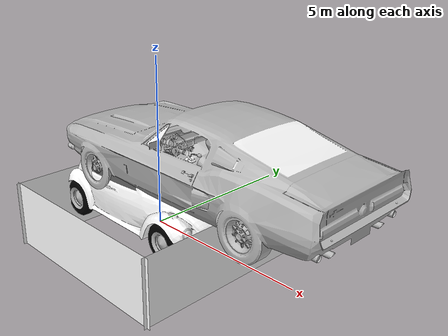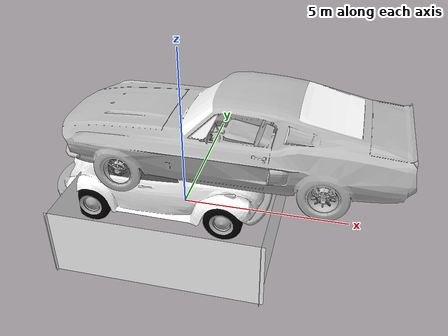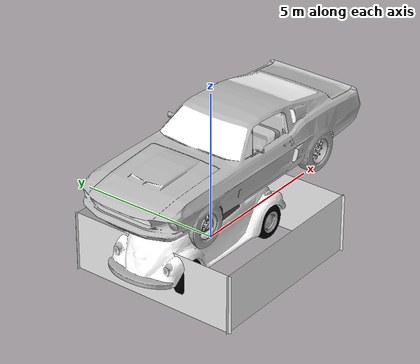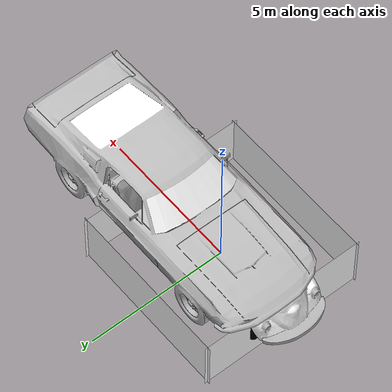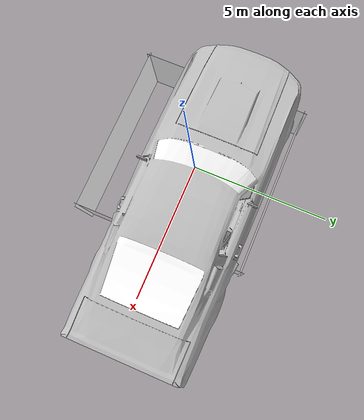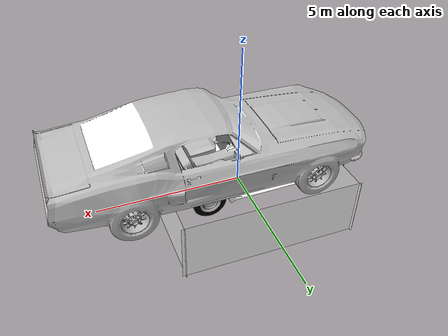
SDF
<sdf version="1.5">
 <world name="default">
  <include><uri>model://sun</uri></include>
  <scene><sky><time>12</time></sky><shadows>0</shadows></scene>
  <include>
   <uri>model://wall</uri>
   <name>north_wall</name>
   <pose>2.9 0 0.2 0 0 1.57</pose>
   <static>true</static>
  </include>
  <include>
   <uri>model://wall</uri>
   <name>south_wall</name>
   <pose>-2.9 0 0.2 0 0 1.57</pose>
   <static>true</static>
  </include>
  <include>
   <uri>model://wall</uri>
   <name>east_wall</name>
   <pose>0 -2.9 0.2 0 0 0</pose>
   <static>true</static>
  </include>
  <include>
   <uri>model://wall</uri>
   <name>west_wall</name>
   <pose>0 2.9 0.2 0 0 0</pose>
   <static>true</static>
  </include>
  <include><uri>model://car2</uri><static>true</static><pose>-0.85 0 0.0 0.0 0.0 3.14</pose></include>
  <include><uri>model://car4</uri><static>true</static><pose>1.4 0.7 0.00 0.0 0.0 0</pose></include>
  <physics type="ode">
   <max_step_size>0.0005</max_step_size>
   <real_time_factor>1.0</real_time_factor>
   <real_time_update_rate>10000.0</real_time_update_rate>
  </physics>
 </world>
</sdf>

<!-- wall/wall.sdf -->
<sdf version='1.5'>
  <model name="wall">
  <link name='wall'>
    <pose>0 0 0 0 0 0</pose>
    <inertial>
      <inertia>
        <ixx>1e-6</ixx>
        <ixy>0</ixy>
        <ixz>0</ixz>
        <iyy>1e-6</iyy>
        <iyz>0</iyz>
        <izz>1e-6</izz>
      </inertia>
      <mass>1e-6</mass>
    </inertial>
    <collision name='collision'>
      <pose>0 0 0 0 0 0</pose>
      <geometry>
        <box>
          <size>6 1e-6 2</size>
        </box>
      </geometry>
    </collision>
    <visual name='visual'>
      <geometry>
        <box>
          <size>6 1e-6 2</size>
        </box>
      </geometry>
      <material>
        <ambient>0.6 0.6 0.6 1</ambient>
        <diffuse>1 1 1 1</diffuse>
        <specular>0 0.5 0 0</specular>
        <emissive>0 0 0 1</emissive>
      </material>
    </visual>
  </link>
</model>
</sdf>

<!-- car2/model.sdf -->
<sdf version='1.5'>
  <model name='car2'>
    <static>true</static>
      <link name='link'>
        <pose frame=''>0 0 1.2 0 0 -1.57</pose>

        <visual name='visual'>
        <cast_shadows>false</cast_shadows>
          <geometry>
            <mesh>
              <scale>0.005 0.005 0.005</scale>
              <uri>model://car2/meshes/car2.dae</uri>
            </mesh>
          </geometry>

        </visual>
      </link>
  </model>
</sdf>

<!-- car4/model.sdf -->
<sdf version='1.5'>
  <model name='car4'>
    <static>true</static>
      <link name='link'>
        <pose frame=''>0 0 0.9 1.57 0 1.57</pose>

        <visual name='visual'>
        <cast_shadows>false</cast_shadows>
          <geometry>
            <mesh>
              <scale>1 1 1</scale>
              <uri>model://car4/meshes/car4.dae</uri>
            </mesh>
          </geometry>

        </visual>
      </link>
  </model>
</sdf>
